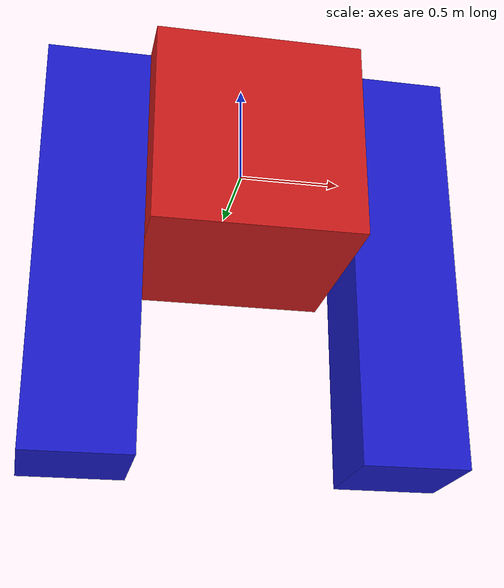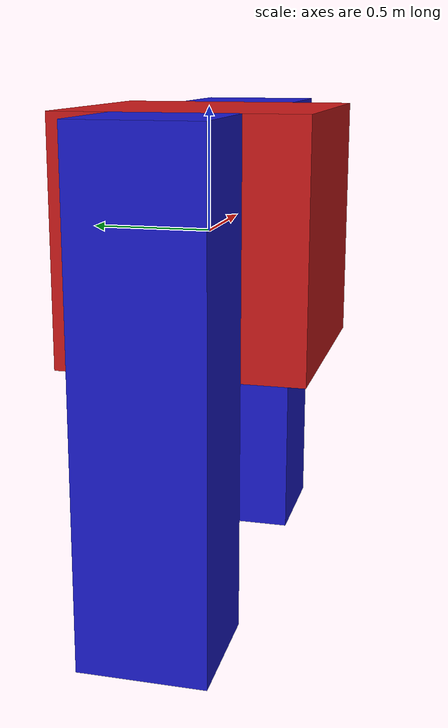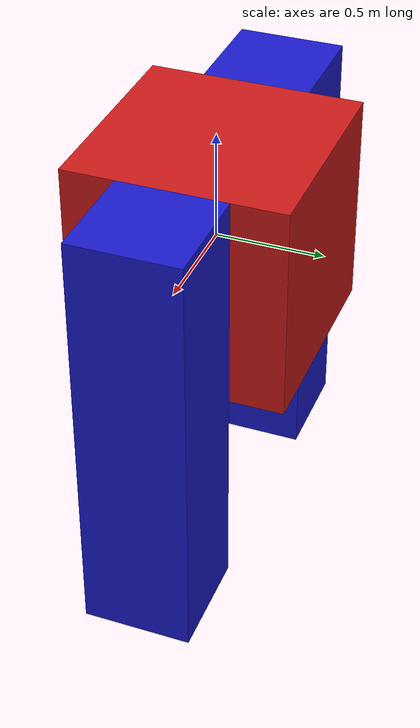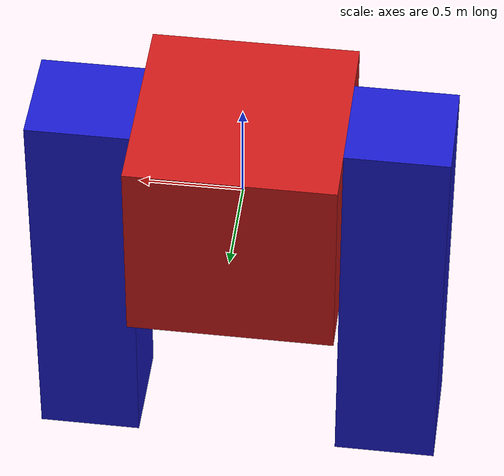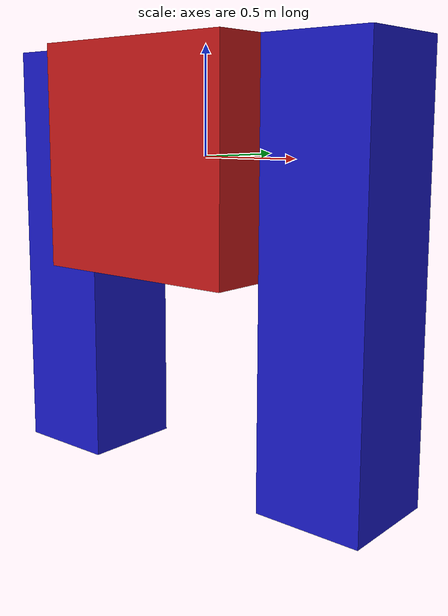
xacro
<?xml version="1.0"?>

<robot xmlns:xacro="http://ros.org/wiki/xacro" name="cube_robot">

  <!-- Define parameters -->
  <xacro:property name="base_length" value="1"/>
  <xacro:property name="base_width" value="1"/>
  <xacro:property name="base_height" value="1"/>

  <xacro:property name="leg_length" value="0.5"/>
  <xacro:property name="leg_width" value="0.5"/>
  <xacro:property name="leg_height" value="2"/>

  <!-- Define base -->
  <link name="base_link">
    <inertial>
      <origin xyz="0 0 0" rpy="0 0 0"/>
      <mass value="1"/>
      <inertia ixx="0.0833333" ixy="0" ixz="0" iyy="0.0833333" iyz="0" izz="0.0833333"/>
    </inertial>
    <collision>
      <origin xyz="0 0 0" rpy="0 0 0"/>
      <geometry>
        <box size="${base_length} ${base_width} ${base_height}"/>
      </geometry>
    </collision>
    <visual>
      <origin xyz="0 0 0" rpy="0 0 0"/>
      <geometry>
        <box size="${base_length} ${base_width} ${base_height}"/>
      </geometry>
      <material name="red">
        <color rgba="0.8 0.1 0.1 1"/>
      </material>
    </visual>
  </link>

  <!-- Define legs -->
  <xacro:macro name="leg" params="prefix x_offset">
    <link name="${prefix}_leg_link">
      <inertial>
        <origin xyz="0 0 ${-base_height/2}" rpy="0 0 0"/>
        <mass value="0.5"/>
        <inertia ixx="0.0138889" ixy="0" ixz="0" iyy="0.0138889" iyz="0" izz="0.0138889"/>
      </inertial>
      <collision>
        <origin xyz="0 0 ${-base_height/2}" rpy="0 0 0"/>
        <geometry>
          <box size="${leg_length} ${leg_width} ${leg_height}"/>
        </geometry>
      </collision>
      <visual>
        <origin xyz="0 0 ${-base_height/2}" rpy="0 0 0"/>
        <geometry>
          <box size="${leg_length} ${leg_width} ${leg_height}"/>
        </geometry>
        <material name="blue">
          <color rgba="0.1 0.1 0.8 1"/>
        </material>
      </visual>
    </link>
  </xacro:macro>

  <!-- Instance legs -->
  <xacro:leg prefix="left" x_offset="-${base_length/2}" />
  <xacro:leg prefix="right" x_offset="${base_length/2}" />

  <!-- Joint definition -->
  <joint name="left_leg_joint" type="revolute">
    <parent link="base_link"/>
    <child link="left_leg_link"/>
    <origin xyz="${-base_length/2-leg_length/2} 0 0" rpy="0 0 0"/>
    <axis xyz="1 0 0"/>
    <limit effort="100" velocity="1.0" lower="-1.57" upper="1.57"/>
  </joint>

  <joint name="right_leg_joint" type="revolute">
    <parent link="base_link"/>
    <child link="right_leg_link"/>
    <origin xyz="${base_length/2+leg_length/2} 0 0" rpy="0 0 0"/>
    <axis xyz="1 0 0"/>
    <limit effort="100" velocity="1.0" lower="-1.57" upper="1.57"/>
  </joint>

  <xacro:include filename="bipedal.ros2_control.xacro" />

</robot>
